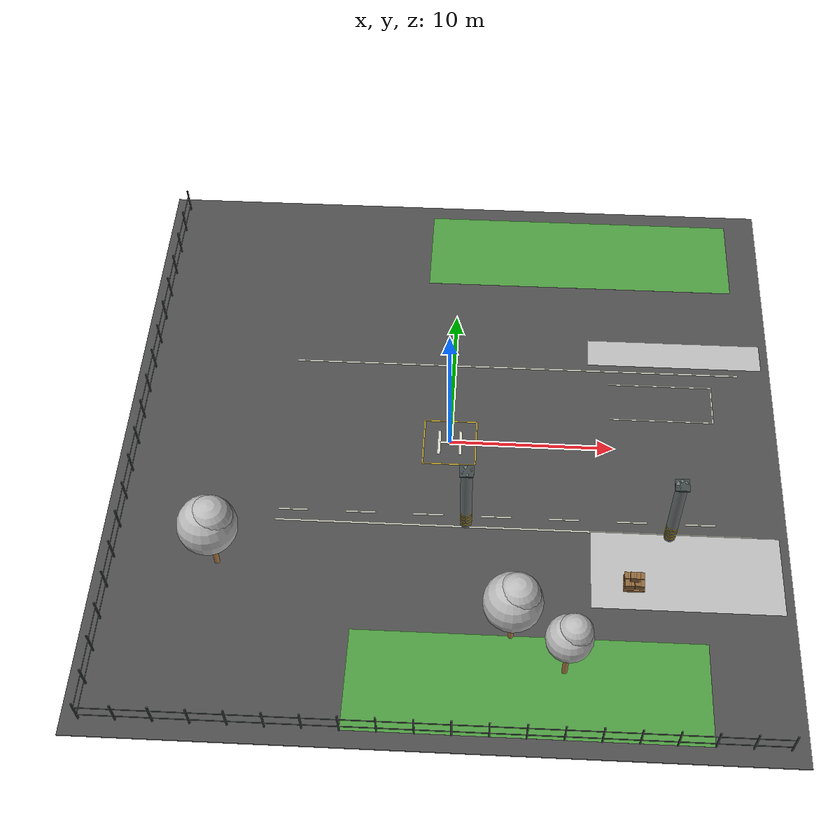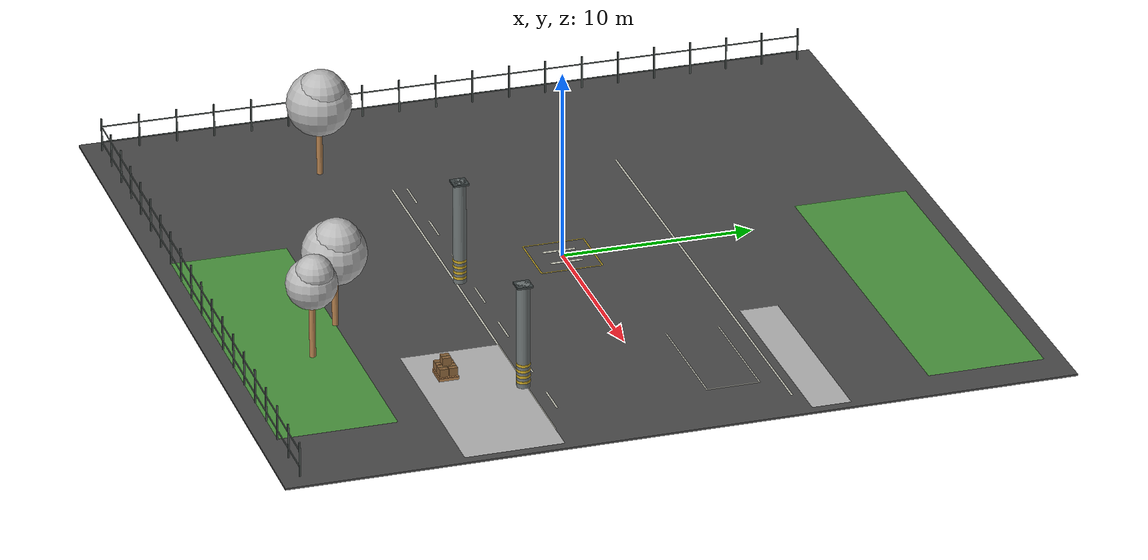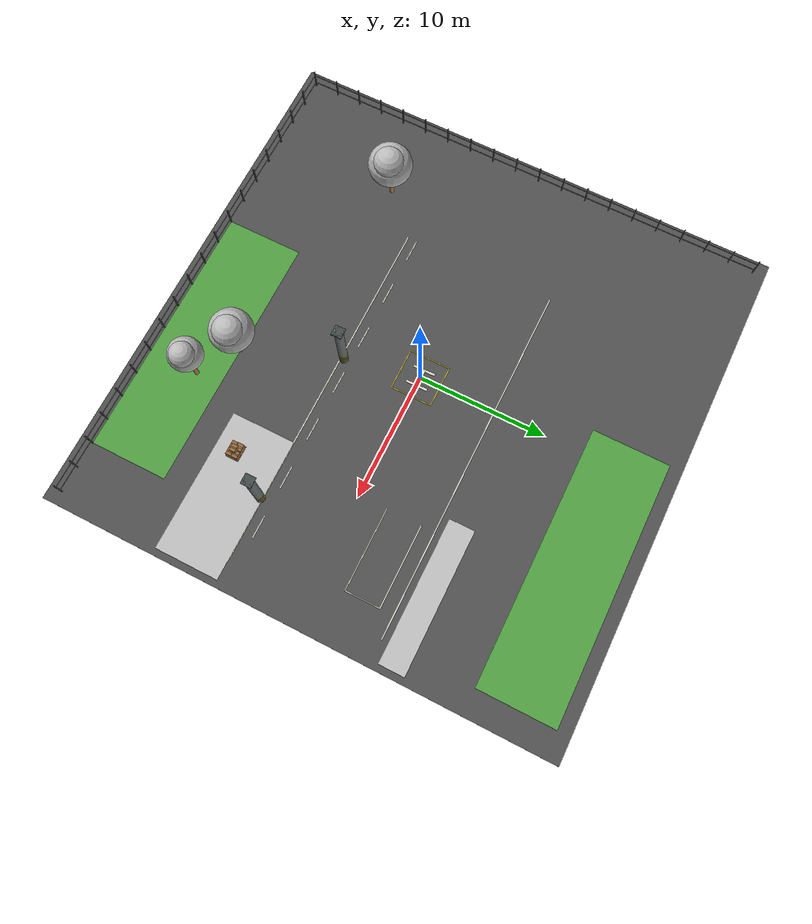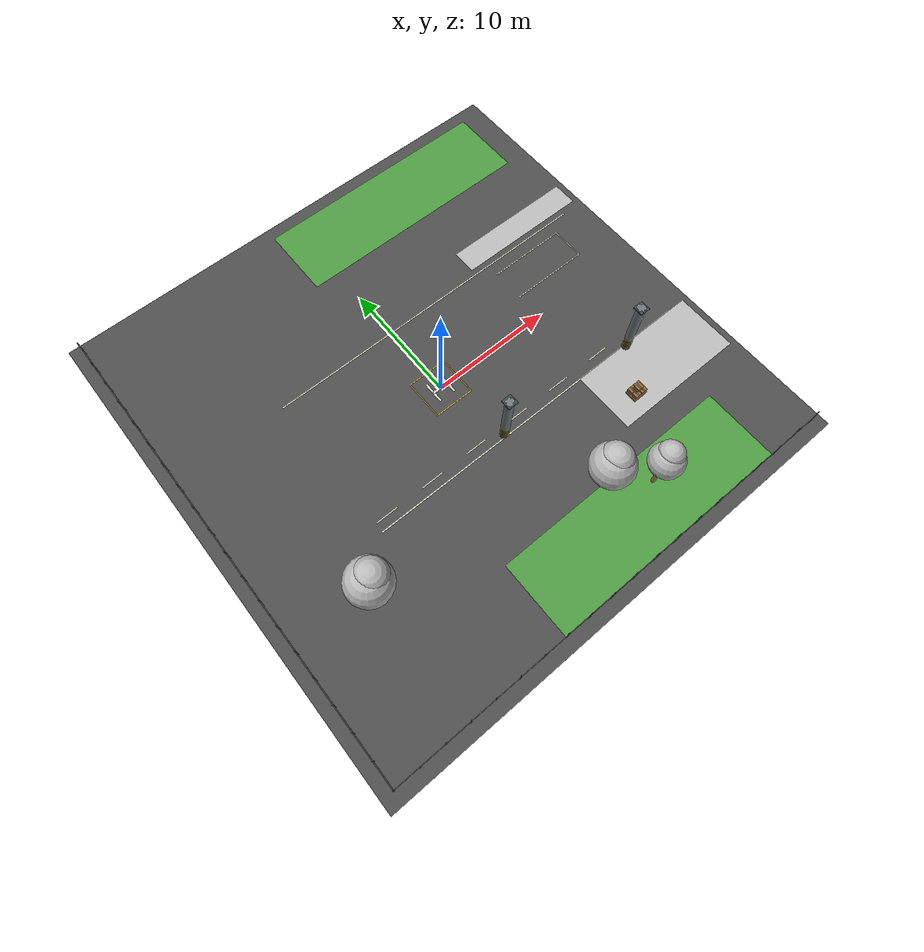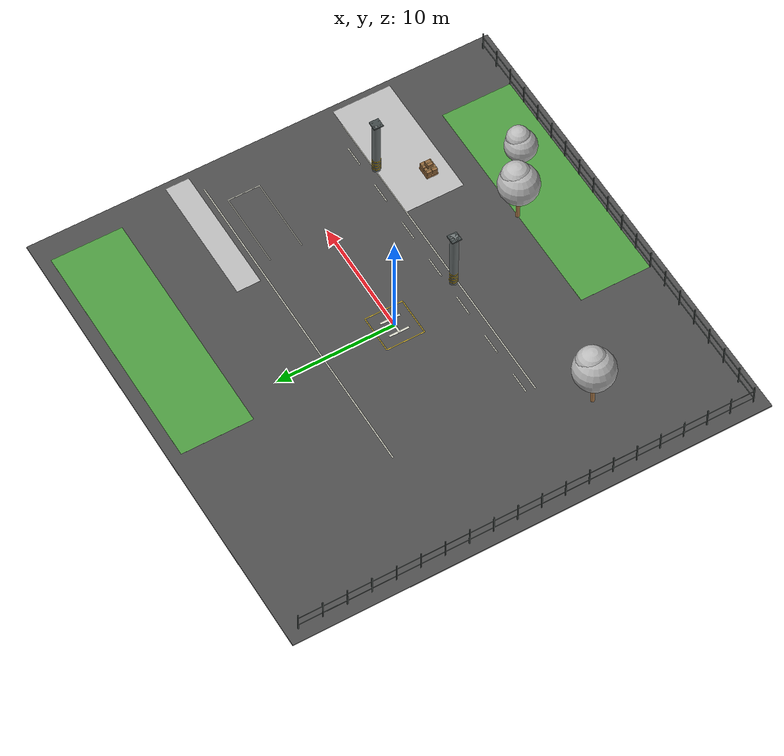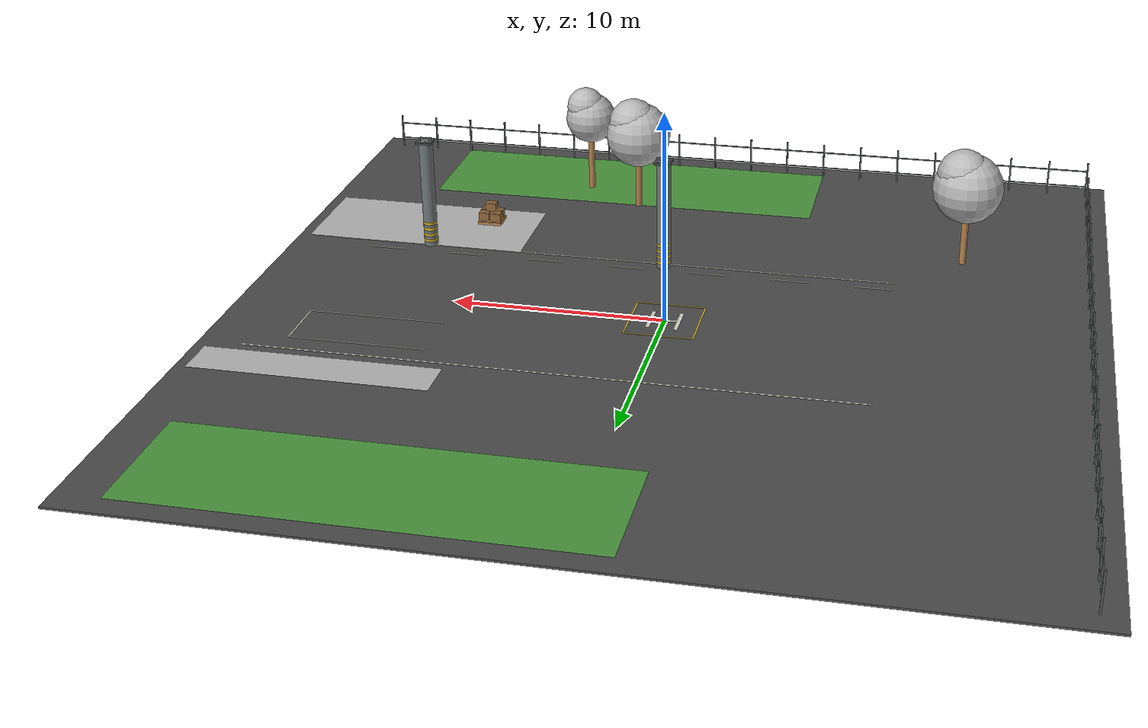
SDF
<sdf version="1.5">
 <world name="default">
  <include><uri>model://sun</uri></include>
  <model name="yard_ground">
   <static>true</static>
   <link name="structure">
    <visual name="solid_ground">
     <pose>0 0 -0.047 0 0 0</pose>
     <geometry><box><size>40 40 0.1</size></box></geometry>
     <material>
      <script>
       <uri>file:///home/fxxk/px4_agent/scene/materials/scripts</uri>
       <uri>file:///home/fxxk/px4_agent/scene/materials/textures</uri>
       <name>Yard/asphalt</name>
      </script>
     </material>
    </visual>
    <collision name="solid_ground_collision">
     <pose>0 0 -0.047 0 0 0</pose>
     <geometry><box><size>40 40 0.1</size></box></geometry>
     <surface><friction><ode><mu>1.0</mu><mu2>1.0</mu2></ode></friction></surface>
    </collision>
    <visual name="west_lawn">
     <pose>-12.5 0 0.0032 0 0 0</pose>
     <geometry><plane><normal>0 0 1</normal><size>15 38</size></plane></geometry>
     <cast_shadows>false</cast_shadows>
     <material>
      <script>
       <uri>file:///home/fxxk/px4_agent/scene/materials/scripts</uri>
       <uri>file:///home/fxxk/px4_agent/scene/materials/textures</uri>
       <name>Yard/grass</name>
      </script>
     </material>
    </visual>
    <visual name="north_lawn">
     <pose>8 16 0.0032 0 0 0</pose>
     <geometry><plane><normal>0 0 1</normal><size>20 6</size></plane></geometry>
     <cast_shadows>false</cast_shadows>
     <material>
      <script>
       <uri>file:///home/fxxk/px4_agent/scene/materials/scripts</uri>
       <uri>file:///home/fxxk/px4_agent/scene/materials/textures</uri>
       <name>Yard/grass</name>
      </script>
     </material>
    </visual>
    <visual name="south_lawn">
     <pose>5 -16 0.0032 0 0 0</pose>
     <geometry><plane><normal>0 0 1</normal><size>20 6</size></plane></geometry>
     <cast_shadows>false</cast_shadows>
     <material>
      <script>
       <uri>file:///home/fxxk/px4_agent/scene/materials/scripts</uri>
       <uri>file:///home/fxxk/px4_agent/scene/materials/textures</uri>
       <name>Yard/grass</name>
      </script>
     </material>
    </visual>
    <visual name="warehouse_apron">
     <pose>14 -8.5 0.0032 0 0 0</pose>
     <geometry><plane><normal>0 0 1</normal><size>11 5</size></plane></geometry>
     <cast_shadows>false</cast_shadows>
     <material>
      <script>
       <uri>file:///home/fxxk/px4_agent/scene/materials/scripts</uri>
       <uri>file:///home/fxxk/px4_agent/scene/materials/textures</uri>
       <name>Yard/concrete</name>
      </script>
     </material>
    </visual>
    <visual name="office_walkway">
     <pose>14 7.5 0.0032 0 0 0</pose>
     <geometry><plane><normal>0 0 1</normal><size>11 2</size></plane></geometry>
     <cast_shadows>false</cast_shadows>
     <material>
      <script>
       <uri>file:///home/fxxk/px4_agent/scene/materials/scripts</uri>
       <uri>file:///home/fxxk/px4_agent/scene/materials/textures</uri>
       <name>Yard/concrete</name>
      </script>
     </material>
    </visual>
    <visual name="road_edge_0">
     <pose>4 -6 0.0033 0 0 0</pose>
     <geometry><box><size>28 0.1 0.0001</size></box></geometry>
     <cast_shadows>false</cast_shadows>
     <material>
      <ambient>0.85 0.85 0.79 1</ambient>
      <diffuse>0.85 0.85 0.79 1</diffuse>
      <specular>0.04 0.04 0.04 1</specular>
     </material>
    </visual>
    <visual name="road_edge_1">
     <pose>4 6 0.0033 0 0 0</pose>
     <geometry><box><size>28 0.1 0.0001</size></box></geometry>
     <cast_shadows>false</cast_shadows>
     <material>
      <ambient>0.85 0.85 0.79 1</ambient>
      <diffuse>0.85 0.85 0.79 1</diffuse>
      <specular>0.04 0.04 0.04 1</specular>
     </material>
    </visual>
    <visual name="lane_dash_0">
     <pose>-9 -5.25 0.0033 0 0 0</pose>
     <geometry><box><size>1.8 0.09 0.0001</size></box></geometry>
     <cast_shadows>false</cast_shadows>
     <material>
      <ambient>0.85 0.85 0.79 1</ambient>
      <diffuse>0.85 0.85 0.79 1</diffuse>
      <specular>0.04 0.04 0.04 1</specular>
     </material>
    </visual>
    <visual name="lane_dash_1">
     <pose>-5 -5.25 0.0033 0 0 0</pose>
     <geometry><box><size>1.8 0.09 0.0001</size></box></geometry>
     <cast_shadows>false</cast_shadows>
     <material>
      <ambient>0.85 0.85 0.79 1</ambient>
      <diffuse>0.85 0.85 0.79 1</diffuse>
      <specular>0.04 0.04 0.04 1</specular>
     </material>
    </visual>
    <visual name="lane_dash_2">
     <pose>-1 -5.25 0.0033 0 0 0</pose>
     <geometry><box><size>1.8 0.09 0.0001</size></box></geometry>
     <cast_shadows>false</cast_shadows>
     <material>
      <ambient>0.85 0.85 0.79 1</ambient>
      <diffuse>0.85 0.85 0.79 1</diffuse>
      <specular>0.04 0.04 0.04 1</specular>
     </material>
    </visual>
    <visual name="lane_dash_3">
     <pose>3 -5.25 0.0033 0 0 0</pose>
     <geometry><box><size>1.8 0.09 0.0001</size></box></geometry>
     <cast_shadows>false</cast_shadows>
     <material>
      <ambient>0.85 0.85 0.79 1</ambient>
      <diffuse>0.85 0.85 0.79 1</diffuse>
      <specular>0.04 0.04 0.04 1</specular>
     </material>
    </visual>
    <visual name="lane_dash_4">
     <pose>7 -5.25 0.0033 0 0 0</pose>
     <geometry><box><size>1.8 0.09 0.0001</size></box></geometry>
     <cast_shadows>false</cast_shadows>
     <material>
      <ambient>0.85 0.85 0.79 1</ambient>
      <diffuse>0.85 0.85 0.79 1</diffuse>
      <specular>0.04 0.04 0.04 1</specular>
     </material>
    </visual>
    <visual name="lane_dash_5">
     <pose>11 -5.25 0.0033 0 0 0</pose>
     <geometry><box><size>1.8 0.09 0.0001</size></box></geometry>
     <cast_shadows>false</cast_shadows>
     <material>
      <ambient>0.85 0.85 0.79 1</ambient>
      <diffuse>0.85 0.85 0.79 1</diffuse>
      <specular>0.04 0.04 0.04 1</specular>
     </material>
    </visual>
    <visual name="lane_dash_6">
     <pose>15 -5.25 0.0033 0 0 0</pose>
     <geometry><box><size>1.8 0.09 0.0001</size></box></geometry>
     <cast_shadows>false</cast_shadows>
     <material>
      <ambient>0.85 0.85 0.79 1</ambient>
      <diffuse>0.85 0.85 0.79 1</diffuse>
      <specular>0.04 0.04 0.04 1</specular>
     </material>
    </visual>
    <visual name="parking_line_0">
     <pose>13 2.25 0.0033 0 0 0</pose>
     <geometry><box><size>6.4 0.07 0.0001</size></box></geometry>
     <cast_shadows>false</cast_shadows>
     <material>
      <ambient>0.85 0.85 0.79 1</ambient>
      <diffuse>0.85 0.85 0.79 1</diffuse>
      <specular>0.04 0.04 0.04 1</specular>
     </material>
    </visual>
    <visual name="parking_line_1">
     <pose>13 4.95 0.0033 0 0 0</pose>
     <geometry><box><size>6.4 0.07 0.0001</size></box></geometry>
     <cast_shadows>false</cast_shadows>
     <material>
      <ambient>0.85 0.85 0.79 1</ambient>
      <diffuse>0.85 0.85 0.79 1</diffuse>
      <specular>0.04 0.04 0.04 1</specular>
     </material>
    </visual>
    <visual name="parking_back">
     <pose>16.2 3.6 0.0033 0 0 0</pose>
     <geometry><box><size>0.07 2.77 0.0001</size></box></geometry>
     <cast_shadows>false</cast_shadows>
     <material>
      <ambient>0.85 0.85 0.79 1</ambient>
      <diffuse>0.85 0.85 0.79 1</diffuse>
      <specular>0.04 0.04 0.04 1</specular>
     </material>
    </visual>
    <visual name="h_left">
     <pose>-0.65 0 0.0033 0 0 0</pose>
     <geometry><box><size>0.18 1.7 0.0001</size></box></geometry>
     <cast_shadows>false</cast_shadows>
     <material>
      <ambient>0.85 0.85 0.79 1</ambient>
      <diffuse>0.85 0.85 0.79 1</diffuse>
      <specular>0.04 0.04 0.04 1</specular>
     </material>
    </visual>
    <visual name="h_right">
     <pose>0.65 0 0.0033 0 0 0</pose>
     <geometry><box><size>0.18 1.7 0.0001</size></box></geometry>
     <cast_shadows>false</cast_shadows>
     <material>
      <ambient>0.85 0.85 0.79 1</ambient>
      <diffuse>0.85 0.85 0.79 1</diffuse>
      <specular>0.04 0.04 0.04 1</specular>
     </material>
    </visual>
    <visual name="h_middle">
     <pose>0 0 0.0033 0 0 0</pose>
     <geometry><box><size>1.4 0.18 0.0001</size></box></geometry>
     <cast_shadows>false</cast_shadows>
     <material>
      <ambient>0.85 0.85 0.79 1</ambient>
      <diffuse>0.85 0.85 0.79 1</diffuse>
      <specular>0.04 0.04 0.04 1</specular>
     </material>
    </visual>
    <visual name="pad_border_0">
     <pose>0 -1.6 0.0033 0 0 0</pose>
     <geometry><box><size>3.2 0.08 0.0001</size></box></geometry>
     <cast_shadows>false</cast_shadows>
     <material>
      <ambient>0.82 0.7 0.18 1</ambient>
      <diffuse>0.82 0.7 0.18 1</diffuse>
      <specular>0.04 0.04 0.04 1</specular>
     </material>
    </visual>
    <visual name="pad_border_1">
     <pose>0 1.6 0.0033 0 0 0</pose>
     <geometry><box><size>3.2 0.08 0.0001</size></box></geometry>
     <cast_shadows>false</cast_shadows>
     <material>
      <ambient>0.82 0.7 0.18 1</ambient>
      <diffuse>0.82 0.7 0.18 1</diffuse>
      <specular>0.04 0.04 0.04 1</specular>
     </material>
    </visual>
    <visual name="pad_border_2">
     <pose>-1.6 0 0.0033 0 0 0</pose>
     <geometry><box><size>0.08 3.2 0.0001</size></box></geometry>
     <cast_shadows>false</cast_shadows>
     <material>
      <ambient>0.82 0.7 0.18 1</ambient>
      <diffuse>0.82 0.7 0.18 1</diffuse>
      <specular>0.04 0.04 0.04 1</specular>
     </material>
    </visual>
    <visual name="pad_border_3">
     <pose>1.6 0 0.0033 0 0 0</pose>
     <geometry><box><size>0.08 3.2 0.0001</size></box></geometry>
     <cast_shadows>false</cast_shadows>
     <material>
      <ambient>0.82 0.7 0.18 1</ambient>
      <diffuse>0.82 0.7 0.18 1</diffuse>
      <specular>0.04 0.04 0.04 1</specular>
     </material>
    </visual>
   </link>
  </model>
  <model name="utility_pillar_southwest">
   <static>true</static>
   <pose>1.213 -5.755 0.003 0 0 0</pose>
   <link name="structure">
    <visual name="tall_pillar">
     <pose>0 0 2.75 0 0 0</pose>
     <geometry><cylinder><radius>0.34</radius><length>5.5</length></cylinder></geometry>
     <material>
      <ambient>0.43 0.46 0.46 1</ambient>
      <diffuse>0.43 0.46 0.46 1</diffuse>
      <specular>0.04 0.04 0.04 1</specular>
     </material>
    </visual>
    <collision name="tall_pillar_collision">
     <pose>0 0 2.75 0 0 0</pose>
     <geometry><cylinder><radius>0.34</radius><length>5.5</length></cylinder></geometry>
     <surface><friction><ode><mu>1.0</mu><mu2>1.0</mu2></ode></friction></surface>
    </collision>
    <visual name="top_cap">
     <pose>0 0 5.45 0 0 0</pose>
     <geometry><box><size>0.8 0.8 0.1</size></box></geometry>
     <material>
      <ambient>0.25 0.28 0.28 1</ambient>
      <diffuse>0.25 0.28 0.28 1</diffuse>
      <specular>0.04 0.04 0.04 1</specular>
     </material>
    </visual>
    <visual name="hazard_ring_0">
     <pose>0 0 0.3 0 0 0</pose>
     <geometry><cylinder><radius>0.345</radius><length>0.14</length></cylinder></geometry>
     <material>
      <ambient>0.8 0.66 0.14 1</ambient>
      <diffuse>0.8 0.66 0.14 1</diffuse>
      <specular>0.04 0.04 0.04 1</specular>
     </material>
    </visual>
    <visual name="hazard_ring_1">
     <pose>0 0 0.6 0 0 0</pose>
     <geometry><cylinder><radius>0.345</radius><length>0.14</length></cylinder></geometry>
     <material>
      <ambient>0.8 0.66 0.14 1</ambient>
      <diffuse>0.8 0.66 0.14 1</diffuse>
      <specular>0.04 0.04 0.04 1</specular>
     </material>
    </visual>
    <visual name="hazard_ring_2">
     <pose>0 0 0.9 0 0 0</pose>
     <geometry><cylinder><radius>0.345</radius><length>0.14</length></cylinder></geometry>
     <material>
      <ambient>0.8 0.66 0.14 1</ambient>
      <diffuse>0.8 0.66 0.14 1</diffuse>
      <specular>0.04 0.04 0.04 1</specular>
     </material>
    </visual>
    <visual name="hazard_ring_3">
     <pose>0 0 1.2 0 0 0</pose>
     <geometry><cylinder><radius>0.345</radius><length>0.14</length></cylinder></geometry>
     <material>
      <ambient>0.8 0.66 0.14 1</ambient>
      <diffuse>0.8 0.66 0.14 1</diffuse>
      <specular>0.04 0.04 0.04 1</specular>
     </material>
    </visual>
   </link>
  </model>
  <model name="utility_pillar_southeast">
   <static>true</static>
   <pose>13.132 -6.116 0.003 0 0 0</pose>
   <link name="structure">
    <visual name="tall_pillar">
     <pose>0 0 2.75 0 0 0</pose>
     <geometry><cylinder><radius>0.34</radius><length>5.5</length></cylinder></geometry>
     <material>
      <ambient>0.43 0.46 0.46 1</ambient>
      <diffuse>0.43 0.46 0.46 1</diffuse>
      <specular>0.04 0.04 0.04 1</specular>
     </material>
    </visual>
    <collision name="tall_pillar_collision">
     <pose>0 0 2.75 0 0 0</pose>
     <geometry><cylinder><radius>0.34</radius><length>5.5</length></cylinder></geometry>
     <surface><friction><ode><mu>1.0</mu><mu2>1.0</mu2></ode></friction></surface>
    </collision>
    <visual name="top_cap">
     <pose>0 0 5.45 0 0 0</pose>
     <geometry><box><size>0.8 0.8 0.1</size></box></geometry>
     <material>
      <ambient>0.25 0.28 0.28 1</ambient>
      <diffuse>0.25 0.28 0.28 1</diffuse>
      <specular>0.04 0.04 0.04 1</specular>
     </material>
    </visual>
    <visual name="hazard_ring_0">
     <pose>0 0 0.3 0 0 0</pose>
     <geometry><cylinder><radius>0.345</radius><length>0.14</length></cylinder></geometry>
     <material>
      <ambient>0.8 0.66 0.14 1</ambient>
      <diffuse>0.8 0.66 0.14 1</diffuse>
      <specular>0.04 0.04 0.04 1</specular>
     </material>
    </visual>
    <visual name="hazard_ring_1">
     <pose>0 0 0.6 0 0 0</pose>
     <geometry><cylinder><radius>0.345</radius><length>0.14</length></cylinder></geometry>
     <material>
      <ambient>0.8 0.66 0.14 1</ambient>
      <diffuse>0.8 0.66 0.14 1</diffuse>
      <specular>0.04 0.04 0.04 1</specular>
     </material>
    </visual>
    <visual name="hazard_ring_2">
     <pose>0 0 0.9 0 0 0</pose>
     <geometry><cylinder><radius>0.345</radius><length>0.14</length></cylinder></geometry>
     <material>
      <ambient>0.8 0.66 0.14 1</ambient>
      <diffuse>0.8 0.66 0.14 1</diffuse>
      <specular>0.04 0.04 0.04 1</specular>
     </material>
    </visual>
    <visual name="hazard_ring_3">
     <pose>0 0 1.2 0 0 0</pose>
     <geometry><cylinder><radius>0.345</radius><length>0.14</length></cylinder></geometry>
     <material>
      <ambient>0.8 0.66 0.14 1</ambient>
      <diffuse>0.8 0.66 0.14 1</diffuse>
      <specular>0.04 0.04 0.04 1</specular>
     </material>
    </visual>
   </link>
  </model>
  <model name="cartons_pallet_1">
   <static>true</static>
   <pose>10.95 -9.4 0.003 0 0 0</pose>
   <link name="structure">
    <visual name="pallet_collision_base">
     <pose>0 0 0.075 0 0 0</pose>
     <geometry><box><size>1.2 1 0.15</size></box></geometry>
     <material>
      <script>
       <uri>file:///home/fxxk/px4_agent/scene/materials/scripts</uri>
       <uri>file:///home/fxxk/px4_agent/scene/materials/textures</uri>
       <name>Yard/wood</name>
      </script>
     </material>
    </visual>
    <collision name="pallet_collision_base_collision">
     <pose>0 0 0.075 0 0 0</pose>
     <geometry><box><size>1.2 1 0.15</size></box></geometry>
     <surface><friction><ode><mu>1.0</mu><mu2>1.0</mu2></ode></friction></surface>
    </collision>
    <visual name="pallet_slat_0">
     <pose>0 -0.43 0.168 0 0 0</pose>
     <geometry><box><size>1.2 0.13 0.035</size></box></geometry>
     <material>
      <script>
       <uri>file:///home/fxxk/px4_agent/scene/materials/scripts</uri>
       <uri>file:///home/fxxk/px4_agent/scene/materials/textures</uri>
       <name>Yard/wood</name>
      </script>
     </material>
    </visual>
    <visual name="pallet_slat_1">
     <pose>0 -0.215 0.168 0 0 0</pose>
     <geometry><box><size>1.2 0.13 0.035</size></box></geometry>
     <material>
      <script>
       <uri>file:///home/fxxk/px4_agent/scene/materials/scripts</uri>
       <uri>file:///home/fxxk/px4_agent/scene/materials/textures</uri>
       <name>Yard/wood</name>
      </script>
     </material>
    </visual>
    <visual name="pallet_slat_2">
     <pose>0 0 0.168 0 0 0</pose>
     <geometry><box><size>1.2 0.13 0.035</size></box></geometry>
     <material>
      <script>
       <uri>file:///home/fxxk/px4_agent/scene/materials/scripts</uri>
       <uri>file:///home/fxxk/px4_agent/scene/materials/textures</uri>
       <name>Yard/wood</name>
      </script>
     </material>
    </visual>
    <visual name="pallet_slat_3">
     <pose>0 0.215 0.168 0 0 0</pose>
     <geometry><box><size>1.2 0.13 0.035</size></box></geometry>
     <material>
      <script>
       <uri>file:///home/fxxk/px4_agent/scene/materials/scripts</uri>
       <uri>file:///home/fxxk/px4_agent/scene/materials/textures</uri>
       <name>Yard/wood</name>
      </script>
     </material>
    </visual>
    <visual name="pallet_slat_4">
     <pose>0 0.43 0.168 0 0 0</pose>
     <geometry><box><size>1.2 0.13 0.035</size></box></geometry>
     <material>
      <script>
       <uri>file:///home/fxxk/px4_agent/scene/materials/scripts</uri>
       <uri>file:///home/fxxk/px4_agent/scene/materials/textures</uri>
       <name>Yard/wood</name>
      </script>
     </material>
    </visual>
    <visual name="carton_0">
     <pose>-0.29 -0.24 0.43 0 0 0</pose>
     <geometry><box><size>0.54 0.44 0.4</size></box></geometry>
     <material>
      <ambient>0.56 0.4 0.23 1</ambient>
      <diffuse>0.56 0.4 0.23 1</diffuse>
      <specular>0.04 0.04 0.04 1</specular>
     </material>
    </visual>
    <collision name="carton_0_collision">
     <pose>-0.29 -0.24 0.43 0 0 0</pose>
     <geometry><box><size>0.54 0.44 0.4</size></box></geometry>
     <surface><friction><ode><mu>1.0</mu><mu2>1.0</mu2></ode></friction></surface>
    </collision>
    <visual name="packing_tape_0">
     <pose>-0.29 -0.24 0.635 0 0 0</pose>
     <geometry><box><size>0.075 0.442 0.008</size></box></geometry>
     <material>
      <ambient>0.72 0.58 0.36 1</ambient>
      <diffuse>0.72 0.58 0.36 1</diffuse>
      <specular>0.04 0.04 0.04 1</specular>
     </material>
    </visual>
    <visual name="carton_1">
     <pose>0.29 -0.24 0.43 0 0 0</pose>
     <geometry><box><size>0.54 0.44 0.4</size></box></geometry>
     <material>
      <ambient>0.56 0.4 0.23 1</ambient>
      <diffuse>0.56 0.4 0.23 1</diffuse>
      <specular>0.04 0.04 0.04 1</specular>
     </material>
    </visual>
    <collision name="carton_1_collision">
     <pose>0.29 -0.24 0.43 0 0 0</pose>
     <geometry><box><size>0.54 0.44 0.4</size></box></geometry>
     <surface><friction><ode><mu>1.0</mu><mu2>1.0</mu2></ode></friction></surface>
    </collision>
    <visual name="packing_tape_1">
     <pose>0.29 -0.24 0.635 0 0 0</pose>
     <geometry><box><size>0.075 0.442 0.008</size></box></geometry>
     <material>
      <ambient>0.72 0.58 0.36 1</ambient>
      <diffuse>0.72 0.58 0.36 1</diffuse>
      <specular>0.04 0.04 0.04 1</specular>
     </material>
    </visual>
    <visual name="carton_2">
     <pose>-0.29 0.24 0.43 0 0 0</pose>
     <geometry><box><size>0.54 0.44 0.4</size></box></geometry>
     <material>
      <ambient>0.56 0.4 0.23 1</ambient>
      <diffuse>0.56 0.4 0.23 1</diffuse>
      <specular>0.04 0.04 0.04 1</specular>
     </material>
    </visual>
    <collision name="carton_2_collision">
     <pose>-0.29 0.24 0.43 0 0 0</pose>
     <geometry><box><size>0.54 0.44 0.4</size></box></geometry>
     <surface><friction><ode><mu>1.0</mu><mu2>1.0</mu2></ode></friction></surface>
    </collision>
    <visual name="packing_tape_2">
     <pose>-0.29 0.24 0.635 0 0 0</pose>
     <geometry><box><size>0.075 0.442 0.008</size></box></geometry>
     <material>
      <ambient>0.72 0.58 0.36 1</ambient>
      <diffuse>0.72 0.58 0.36 1</diffuse>
      <specular>0.04 0.04 0.04 1</specular>
     </material>
    </visual>
    <visual name="carton_3">
     <pose>0.29 0.24 0.43 0 0 0</pose>
     <geometry><box><size>0.54 0.44 0.4</size></box></geometry>
     <material>
      <ambient>0.56 0.4 0.23 1</ambient>
      <diffuse>0.56 0.4 0.23 1</diffuse>
      <specular>0.04 0.04 0.04 1</specular>
     </material>
    </visual>
    <collision name="carton_3_collision">
     <pose>0.29 0.24 0.43 0 0 0</pose>
     <geometry><box><size>0.54 0.44 0.4</size></box></geometry>
     <surface><friction><ode><mu>1.0</mu><mu2>1.0</mu2></ode></friction></surface>
    </collision>
    <visual name="packing_tape_3">
     <pose>0.29 0.24 0.635 0 0 0</pose>
     <geometry><box><size>0.075 0.442 0.008</size></box></geometry>
     <material>
      <ambient>0.72 0.58 0.36 1</ambient>
      <diffuse>0.72 0.58 0.36 1</diffuse>
      <specular>0.04 0.04 0.04 1</specular>
     </material>
    </visual>
    <visual name="carton_4">
     <pose>0 0 0.87 0 0 0</pose>
     <geometry><box><size>0.54 0.44 0.4</size></box></geometry>
     <material>
      <ambient>0.56 0.4 0.23 1</ambient>
      <diffuse>0.56 0.4 0.23 1</diffuse>
      <specular>0.04 0.04 0.04 1</specular>
     </material>
    </visual>
    <collision name="carton_4_collision">
     <pose>0 0 0.87 0 0 0</pose>
     <geometry><box><size>0.54 0.44 0.4</size></box></geometry>
     <surface><friction><ode><mu>1.0</mu><mu2>1.0</mu2></ode></friction></surface>
    </collision>
    <visual name="packing_tape_4">
     <pose>0 0 1.075 0 0 0</pose>
     <geometry><box><size>0.075 0.442 0.008</size></box></geometry>
     <material>
      <ambient>0.72 0.58 0.36 1</ambient>
      <diffuse>0.72 0.58 0.36 1</diffuse>
      <specular>0.04 0.04 0.04 1</specular>
     </material>
    </visual>
   </link>
  </model>
  <model name="yard_tree_1">
   <static>true</static>
   <pose>-13 -9 0.003 0 0 0</pose>
   <link name="structure">
    <visual name="trunk">
     <pose>0 0 1.6 0 0 0</pose>
     <geometry><cylinder><radius>0.16</radius><length>3.2</length></cylinder></geometry>
     <material>
      <script>
       <uri>file:///home/fxxk/px4_agent/scene/materials/scripts</uri>
       <uri>file:///home/fxxk/px4_agent/scene/materials/textures</uri>
       <name>Yard/wood</name>
      </script>
     </material>
    </visual>
    <collision name="trunk_collision">
     <pose>0 0 1.6 0 0 0</pose>
     <geometry><cylinder><radius>0.16</radius><length>3.2</length></cylinder></geometry>
     <surface><friction><ode><mu>1.0</mu><mu2>1.0</mu2></ode></friction></surface>
    </collision>
    <visual name="crown">
     <pose>0 0 3.95 0 0 0</pose>
     <geometry><sphere><radius>1.7</radius></sphere></geometry>
     <material>
      <script>
       <uri>file:///home/fxxk/px4_agent/scene/materials/scripts</uri>
       <uri>file:///home/fxxk/px4_agent/scene/materials/textures</uri>
       <name>Yard/foliage</name>
      </script>
     </material>
    </visual>
    <collision name="crown_collision">
     <pose>0 0 3.95 0 0 0</pose>
     <geometry><sphere><radius>1.7</radius></sphere></geometry>
     <surface><friction><ode><mu>1.0</mu><mu2>1.0</mu2></ode></friction></surface>
    </collision>
    <visual name="crown_top">
     <pose>0.25 0.06 4.6 0 0 0</pose>
     <geometry><sphere><radius>1.275</radius></sphere></geometry>
     <material>
      <script>
       <uri>file:///home/fxxk/px4_agent/scene/materials/scripts</uri>
       <uri>file:///home/fxxk/px4_agent/scene/materials/textures</uri>
       <name>Yard/foliage</name>
      </script>
     </material>
    </visual>
   </link>
  </model>
  <model name="yard_tree_5">
   <static>true</static>
   <pose>4 -13 0.003 0 0 0</pose>
   <link name="structure">
    <visual name="trunk">
     <pose>0 0 1.6 0 0 0</pose>
     <geometry><cylinder><radius>0.16</radius><length>3.2</length></cylinder></geometry>
     <material>
      <script>
       <uri>file:///home/fxxk/px4_agent/scene/materials/scripts</uri>
       <uri>file:///home/fxxk/px4_agent/scene/materials/textures</uri>
       <name>Yard/wood</name>
      </script>
     </material>
    </visual>
    <collision name="trunk_collision">
     <pose>0 0 1.6 0 0 0</pose>
     <geometry><cylinder><radius>0.16</radius><length>3.2</length></cylinder></geometry>
     <surface><friction><ode><mu>1.0</mu><mu2>1.0</mu2></ode></friction></surface>
    </collision>
    <visual name="crown">
     <pose>0 0 3.95 0 0 0</pose>
     <geometry><sphere><radius>1.65</radius></sphere></geometry>
     <material>
      <script>
       <uri>file:///home/fxxk/px4_agent/scene/materials/scripts</uri>
       <uri>file:///home/fxxk/px4_agent/scene/materials/textures</uri>
       <name>Yard/foliage</name>
      </script>
     </material>
    </visual>
    <collision name="crown_collision">
     <pose>0 0 3.95 0 0 0</pose>
     <geometry><sphere><radius>1.65</radius></sphere></geometry>
     <surface><friction><ode><mu>1.0</mu><mu2>1.0</mu2></ode></friction></surface>
    </collision>
    <visual name="crown_top">
     <pose>0.25 0.06 4.6 0 0 0</pose>
     <geometry><sphere><radius>1.2374999999999998</radius></sphere></geometry>
     <material>
      <script>
       <uri>file:///home/fxxk/px4_agent/scene/materials/scripts</uri>
       <uri>file:///home/fxxk/px4_agent/scene/materials/textures</uri>
       <name>Yard/foliage</name>
      </script>
     </material>
    </visual>
   </link>
  </model>
  <model name="yard_tree_7">
   <static>true</static>
   <pose>7 -15 0.003 0 0 0</pose>
   <link name="structure">
    <visual name="trunk">
     <pose>0 0 1.6 0 0 0</pose>
     <geometry><cylinder><radius>0.16</radius><length>3.2</length></cylinder></geometry>
     <material>
      <script>
       <uri>file:///home/fxxk/px4_agent/scene/materials/scripts</uri>
       <uri>file:///home/fxxk/px4_agent/scene/materials/textures</uri>
       <name>Yard/wood</name>
      </script>
     </material>
    </visual>
    <collision name="trunk_collision">
     <pose>0 0 1.6 0 0 0</pose>
     <geometry><cylinder><radius>0.16</radius><length>3.2</length></cylinder></geometry>
     <surface><friction><ode><mu>1.0</mu><mu2>1.0</mu2></ode></friction></surface>
    </collision>
    <visual name="crown">
     <pose>0 0 3.95 0 0 0</pose>
     <geometry><sphere><radius>1.3</radius></sphere></geometry>
     <material>
      <script>
       <uri>file:///home/fxxk/px4_agent/scene/materials/scripts</uri>
       <uri>file:///home/fxxk/px4_agent/scene/materials/textures</uri>
       <name>Yard/foliage</name>
      </script>
     </material>
    </visual>
    <collision name="crown_collision">
     <pose>0 0 3.95 0 0 0</pose>
     <geometry><sphere><radius>1.3</radius></sphere></geometry>
     <surface><friction><ode><mu>1.0</mu><mu2>1.0</mu2></ode></friction></surface>
    </collision>
    <visual name="crown_top">
     <pose>0.25 0.06 4.6 0 0 0</pose>
     <geometry><sphere><radius>0.9750000000000001</radius></sphere></geometry>
     <material>
      <script>
       <uri>file:///home/fxxk/px4_agent/scene/materials/scripts</uri>
       <uri>file:///home/fxxk/px4_agent/scene/materials/textures</uri>
       <name>Yard/foliage</name>
      </script>
     </material>
    </visual>
   </link>
  </model>
  <model name="south_fence">
   <static>true</static>
   <pose>0 -19 0.003 0 0 0</pose>
   <link name="structure">
    <collision name="fence_collision">
     <pose>0 0 .9 0 0 0</pose>
     <geometry><box><size>38 0.12 1.8</size></box></geometry>
    </collision>
    <visual name="fence_post_0">
     <pose>-19 0 0.9 0 0 0</pose>
     <geometry><box><size>0.08 0.08 1.8</size></box></geometry>
     <material>
      <ambient>0.31 0.34 0.33 1</ambient>
      <diffuse>0.31 0.34 0.33 1</diffuse>
      <specular>0.04 0.04 0.04 1</specular>
     </material>
    </visual>
    <visual name="fence_post_1">
     <pose>-17 0 0.9 0 0 0</pose>
     <geometry><box><size>0.08 0.08 1.8</size></box></geometry>
     <material>
      <ambient>0.31 0.34 0.33 1</ambient>
      <diffuse>0.31 0.34 0.33 1</diffuse>
      <specular>0.04 0.04 0.04 1</specular>
     </material>
    </visual>
    <visual name="fence_post_2">
     <pose>-15 0 0.9 0 0 0</pose>
     <geometry><box><size>0.08 0.08 1.8</size></box></geometry>
     <material>
      <ambient>0.31 0.34 0.33 1</ambient>
      <diffuse>0.31 0.34 0.33 1</diffuse>
      <specular>0.04 0.04 0.04 1</specular>
     </material>
    </visual>
    <visual name="fence_post_3">
     <pose>-13 0 0.9 0 0 0</pose>
     <geometry><box><size>0.08 0.08 1.8</size></box></geometry>
     <material>
      <ambient>0.31 0.34 0.33 1</ambient>
      <diffuse>0.31 0.34 0.33 1</diffuse>
      <specular>0.04 0.04 0.04 1</specular>
     </material>
    </visual>
    <visual name="fence_post_4">
     <pose>-11 0 0.9 0 0 0</pose>
     <geometry><box><size>0.08 0.08 1.8</size></box></geometry>
     <material>
      <ambient>0.31 0.34 0.33 1</ambient>
      <diffuse>0.31 0.34 0.33 1</diffuse>
      <specular>0.04 0.04 0.04 1</specular>
     </material>
    </visual>
    <visual name="fence_post_5">
     <pose>-9 0 0.9 0 0 0</pose>
     <geometry><box><size>0.08 0.08 1.8</size></box></geometry>
     <material>
      <ambient>0.31 0.34 0.33 1</ambient>
      <diffuse>0.31 0.34 0.33 1</diffuse>
      <specular>0.04 0.04 0.04 1</specular>
     </material>
    </visual>
    <visual name="fence_post_6">
     <pose>-7 0 0.9 0 0 0</pose>
     <geometry><box><size>0.08 0.08 1.8</size></box></geometry>
     <material>
      <ambient>0.31 0.34 0.33 1</ambient>
      <diffuse>0.31 0.34 0.33 1</diffuse>
      <specular>0.04 0.04 0.04 1</specular>
     </material>
    </visual>
    <visual name="fence_post_7">
     <pose>-5 0 0.9 0 0 0</pose>
     <geometry><box><size>0.08 0.08 1.8</size></box></geometry>
     <material>
      <ambient>0.31 0.34 0.33 1</ambient>
      <diffuse>0.31 0.34 0.33 1</diffuse>
      <specular>0.04 0.04 0.04 1</specular>
     </material>
    </visual>
    <visual name="fence_post_8">
     <pose>-3 0 0.9 0 0 0</pose>
     <geometry><box><size>0.08 0.08 1.8</size></box></geometry>
     <material>
      <ambient>0.31 0.34 0.33 1</ambient>
      <diffuse>0.31 0.34 0.33 1</diffuse>
      <specular>0.04 0.04 0.04 1</specular>
     </material>
    </visual>
    <visual name="fence_post_9">
     <pose>-1 0 0.9 0 0 0</pose>
     <geometry><box><size>0.08 0.08 1.8</size></box></geometry>
     <material>
      <ambient>0.31 0.34 0.33 1</ambient>
      <diffuse>0.31 0.34 0.33 1</diffuse>
      <specular>0.04 0.04 0.04 1</specular>
     </material>
    </visual>
    <visual name="fence_post_10">
     <pose>1 0 0.9 0 0 0</pose>
     <geometry><box><size>0.08 0.08 1.8</size></box></geometry>
     <material>
      <ambient>0.31 0.34 0.33 1</ambient>
      <diffuse>0.31 0.34 0.33 1</diffuse>
      <specular>0.04 0.04 0.04 1</specular>
     </material>
    </visual>
    <visual name="fence_post_11">
     <pose>3 0 0.9 0 0 0</pose>
     <geometry><box><size>0.08 0.08 1.8</size></box></geometry>
     <material>
      <ambient>0.31 0.34 0.33 1</ambient>
      <diffuse>0.31 0.34 0.33 1</diffuse>
      <specular>0.04 0.04 0.04 1</specular>
     </material>
    </visual>
    <visual name="fence_post_12">
     <pose>5 0 0.9 0 0 0</pose>
     <geometry><box><size>0.08 0.08 1.8</size></box></geometry>
     <material>
      <ambient>0.31 0.34 0.33 1</ambient>
      <diffuse>0.31 0.34 0.33 1</diffuse>
      <specular>0.04 0.04 0.04 1</specular>
     </material>
    </visual>
    <visual name="fence_post_13">
     <pose>7 0 0.9 0 0 0</pose>
     <geometry><box><size>0.08 0.08 1.8</size></box></geometry>
     <material>
      <ambient>0.31 0.34 0.33 1</ambient>
      <diffuse>0.31 0.34 0.33 1</diffuse>
      <specular>0.04 0.04 0.04 1</specular>
     </material>
    </visual>
    <visual name="fence_post_14">
     <pose>9 0 0.9 0 0 0</pose>
     <geometry><box><size>0.08 0.08 1.8</size></box></geometry>
     <material>
      <ambient>0.31 0.34 0.33 1</ambient>
      <diffuse>0.31 0.34 0.33 1</diffuse>
      <specular>0.04 0.04 0.04 1</specular>
     </material>
    </visual>
    <visual name="fence_post_15">
     <pose>11 0 0.9 0 0 0</pose>
     <geometry><box><size>0.08 0.08 1.8</size></box></geometry>
     <material>
      <ambient>0.31 0.34 0.33 1</ambient>
      <diffuse>0.31 0.34 0.33 1</diffuse>
      <specular>0.04 0.04 0.04 1</specular>
     </material>
    </visual>
    <visual name="fence_post_16">
     <pose>13 0 0.9 0 0 0</pose>
     <geometry><box><size>0.08 0.08 1.8</size></box></geometry>
     <material>
      <ambient>0.31 0.34 0.33 1</ambient>
      <diffuse>0.31 0.34 0.33 1</diffuse>
      <specular>0.04 0.04 0.04 1</specular>
     </material>
    </visual>
    <visual name="fence_post_17">
     <pose>15 0 0.9 0 0 0</pose>
     <geometry><box><size>0.08 0.08 1.8</size></box></geometry>
     <material>
      <ambient>0.31 0.34 0.33 1</ambient>
      <diffuse>0.31 0.34 0.33 1</diffuse>
      <specular>0.04 0.04 0.04 1</specular>
     </material>
    </visual>
    <visual name="fence_post_18">
     <pose>17 0 0.9 0 0 0</pose>
     <geometry><box><size>0.08 0.08 1.8</size></box></geometry>
     <material>
      <ambient>0.31 0.34 0.33 1</ambient>
      <diffuse>0.31 0.34 0.33 1</diffuse>
      <specular>0.04 0.04 0.04 1</specular>
     </material>
    </visual>
    <visual name="fence_post_19">
     <pose>19 0 0.9 0 0 0</pose>
     <geometry><box><size>0.08 0.08 1.8</size></box></geometry>
     <material>
      <ambient>0.31 0.34 0.33 1</ambient>
      <diffuse>0.31 0.34 0.33 1</diffuse>
      <specular>0.04 0.04 0.04 1</specular>
     </material>
    </visual>
    <visual name="fence_rail_0">
     <pose>0 0 0.48 0 0 0</pose>
     <geometry><box><size>38 0.04 0.055</size></box></geometry>
     <material>
      <ambient>0.35 0.38 0.37 1</ambient>
      <diffuse>0.35 0.38 0.37 1</diffuse>
      <specular>0.04 0.04 0.04 1</specular>
     </material>
    </visual>
    <visual name="fence_rail_1">
     <pose>0 0 1.35 0 0 0</pose>
     <geometry><box><size>38 0.04 0.055</size></box></geometry>
     <material>
      <ambient>0.35 0.38 0.37 1</ambient>
      <diffuse>0.35 0.38 0.37 1</diffuse>
      <specular>0.04 0.04 0.04 1</specular>
     </material>
    </visual>
   </link>
  </model>
  <model name="west_fence">
   <static>true</static>
   <pose>-19 0 0.003 0 0 0</pose>
   <link name="structure">
    <collision name="fence_collision">
     <pose>0 0 .9 0 0 0</pose>
     <geometry><box><size>0.12 38 1.8</size></box></geometry>
    </collision>
    <visual name="fence_post_0">
     <pose>0 -19 0.9 0 0 0</pose>
     <geometry><box><size>0.08 0.08 1.8</size></box></geometry>
     <material>
      <ambient>0.31 0.34 0.33 1</ambient>
      <diffuse>0.31 0.34 0.33 1</diffuse>
      <specular>0.04 0.04 0.04 1</specular>
     </material>
    </visual>
    <visual name="fence_post_1">
     <pose>0 -17 0.9 0 0 0</pose>
     <geometry><box><size>0.08 0.08 1.8</size></box></geometry>
     <material>
      <ambient>0.31 0.34 0.33 1</ambient>
      <diffuse>0.31 0.34 0.33 1</diffuse>
      <specular>0.04 0.04 0.04 1</specular>
     </material>
    </visual>
    <visual name="fence_post_2">
     <pose>0 -15 0.9 0 0 0</pose>
     <geometry><box><size>0.08 0.08 1.8</size></box></geometry>
     <material>
      <ambient>0.31 0.34 0.33 1</ambient>
      <diffuse>0.31 0.34 0.33 1</diffuse>
      <specular>0.04 0.04 0.04 1</specular>
     </material>
    </visual>
    <visual name="fence_post_3">
     <pose>0 -13 0.9 0 0 0</pose>
     <geometry><box><size>0.08 0.08 1.8</size></box></geometry>
     <material>
      <ambient>0.31 0.34 0.33 1</ambient>
      <diffuse>0.31 0.34 0.33 1</diffuse>
      <specular>0.04 0.04 0.04 1</specular>
     </material>
    </visual>
    <visual name="fence_post_4">
     <pose>0 -11 0.9 0 0 0</pose>
     <geometry><box><size>0.08 0.08 1.8</size></box></geometry>
     <material>
      <ambient>0.31 0.34 0.33 1</ambient>
      <diffuse>0.31 0.34 0.33 1</diffuse>
      <specular>0.04 0.04 0.04 1</specular>
     </material>
    </visual>
    <visual name="fence_post_5">
     <pose>0 -9 0.9 0 0 0</pose>
     <geometry><box><size>0.08 0.08 1.8</size></box></geometry>
     <material>
      <ambient>0.31 0.34 0.33 1</ambient>
      <diffuse>0.31 0.34 0.33 1</diffuse>
      <specular>0.04 0.04 0.04 1</specular>
     </material>
    </visual>
    <visual name="fence_post_6">
     <pose>0 -7 0.9 0 0 0</pose>
     <geometry><box><size>0.08 0.08 1.8</size></box></geometry>
     <material>
      <ambient>0.31 0.34 0.33 1</ambient>
      <diffuse>0.31 0.34 0.33 1</diffuse>
      <specular>0.04 0.04 0.04 1</specular>
     </material>
    </visual>
    <visual name="fence_post_7">
     <pose>0 -5 0.9 0 0 0</pose>
     <geometry><box><size>0.08 0.08 1.8</size></box></geometry>
     <material>
      <ambient>0.31 0.34 0.33 1</ambient>
      <diffuse>0.31 0.34 0.33 1</diffuse>
      <specular>0.04 0.04 0.04 1</specular>
     </material>
    </visual>
    <visual name="fence_post_8">
     <pose>0 -3 0.9 0 0 0</pose>
     <geometry><box><size>0.08 0.08 1.8</size></box></geometry>
     <material>
      <ambient>0.31 0.34 0.33 1</ambient>
      <diffuse>0.31 0.34 0.33 1</diffuse>
      <specular>0.04 0.04 0.04 1</specular>
     </material>
    </visual>
    <visual name="fence_post_9">
     <pose>0 -1 0.9 0 0 0</pose>
     <geometry><box><size>0.08 0.08 1.8</size></box></geometry>
     <material>
      <ambient>0.31 0.34 0.33 1</ambient>
      <diffuse>0.31 0.34 0.33 1</diffuse>
      <specular>0.04 0.04 0.04 1</specular>
     </material>
    </visual>
    <visual name="fence_post_10">
     <pose>0 1 0.9 0 0 0</pose>
     <geometry><box><size>0.08 0.08 1.8</size></box></geometry>
     <material>
      <ambient>0.31 0.34 0.33 1</ambient>
      <diffuse>0.31 0.34 0.33 1</diffuse>
      <specular>0.04 0.04 0.04 1</specular>
     </material>
    </visual>
    <visual name="fence_post_11">
     <pose>0 3 0.9 0 0 0</pose>
     <geometry><box><size>0.08 0.08 1.8</size></box></geometry>
     <material>
      <ambient>0.31 0.34 0.33 1</ambient>
      <diffuse>0.31 0.34 0.33 1</diffuse>
      <specular>0.04 0.04 0.04 1</specular>
     </material>
    </visual>
    <visual name="fence_post_12">
     <pose>0 5 0.9 0 0 0</pose>
     <geometry><box><size>0.08 0.08 1.8</size></box></geometry>
     <material>
      <ambient>0.31 0.34 0.33 1</ambient>
      <diffuse>0.31 0.34 0.33 1</diffuse>
      <specular>0.04 0.04 0.04 1</specular>
     </material>
    </visual>
    <visual name="fence_post_13">
     <pose>0 7 0.9 0 0 0</pose>
     <geometry><box><size>0.08 0.08 1.8</size></box></geometry>
     <material>
      <ambient>0.31 0.34 0.33 1</ambient>
      <diffuse>0.31 0.34 0.33 1</diffuse>
      <specular>0.04 0.04 0.04 1</specular>
     </material>
    </visual>
    <visual name="fence_post_14">
     <pose>0 9 0.9 0 0 0</pose>
     <geometry><box><size>0.08 0.08 1.8</size></box></geometry>
     <material>
      <ambient>0.31 0.34 0.33 1</ambient>
      <diffuse>0.31 0.34 0.33 1</diffuse>
      <specular>0.04 0.04 0.04 1</specular>
     </material>
    </visual>
    <visual name="fence_post_15">
     <pose>0 11 0.9 0 0 0</pose>
     <geometry><box><size>0.08 0.08 1.8</size></box></geometry>
     <material>
      <ambient>0.31 0.34 0.33 1</ambient>
      <diffuse>0.31 0.34 0.33 1</diffuse>
      <specular>0.04 0.04 0.04 1</specular>
     </material>
    </visual>
    <visual name="fence_post_16">
     <pose>0 13 0.9 0 0 0</pose>
     <geometry><box><size>0.08 0.08 1.8</size></box></geometry>
     <material>
      <ambient>0.31 0.34 0.33 1</ambient>
      <diffuse>0.31 0.34 0.33 1</diffuse>
      <specular>0.04 0.04 0.04 1</specular>
     </material>
    </visual>
    <visual name="fence_post_17">
     <pose>0 15 0.9 0 0 0</pose>
     <geometry><box><size>0.08 0.08 1.8</size></box></geometry>
     <material>
      <ambient>0.31 0.34 0.33 1</ambient>
      <diffuse>0.31 0.34 0.33 1</diffuse>
      <specular>0.04 0.04 0.04 1</specular>
     </material>
    </visual>
    <visual name="fence_post_18">
     <pose>0 17 0.9 0 0 0</pose>
     <geometry><box><size>0.08 0.08 1.8</size></box></geometry>
     <material>
      <ambient>0.31 0.34 0.33 1</ambient>
      <diffuse>0.31 0.34 0.33 1</diffuse>
      <specular>0.04 0.04 0.04 1</specular>
     </material>
    </visual>
    <visual name="fence_post_19">
     <pose>0 19 0.9 0 0 0</pose>
     <geometry><box><size>0.08 0.08 1.8</size></box></geometry>
     <material>
      <ambient>0.31 0.34 0.33 1</ambient>
      <diffuse>0.31 0.34 0.33 1</diffuse>
      <specular>0.04 0.04 0.04 1</specular>
     </material>
    </visual>
    <visual name="fence_rail_0">
     <pose>0 0 0.48 0 0 0</pose>
     <geometry><box><size>0.04 38 0.055</size></box></geometry>
     <material>
      <ambient>0.35 0.38 0.37 1</ambient>
      <diffuse>0.35 0.38 0.37 1</diffuse>
      <specular>0.04 0.04 0.04 1</specular>
     </material>
    </visual>
    <visual name="fence_rail_1">
     <pose>0 0 1.35 0 0 0</pose>
     <geometry><box><size>0.04 38 0.055</size></box></geometry>
     <material>
      <ambient>0.35 0.38 0.37 1</ambient>
      <diffuse>0.35 0.38 0.37 1</diffuse>
      <specular>0.04 0.04 0.04 1</specular>
     </material>
    </visual>
   </link>
  </model>
 </world>
</sdf>
